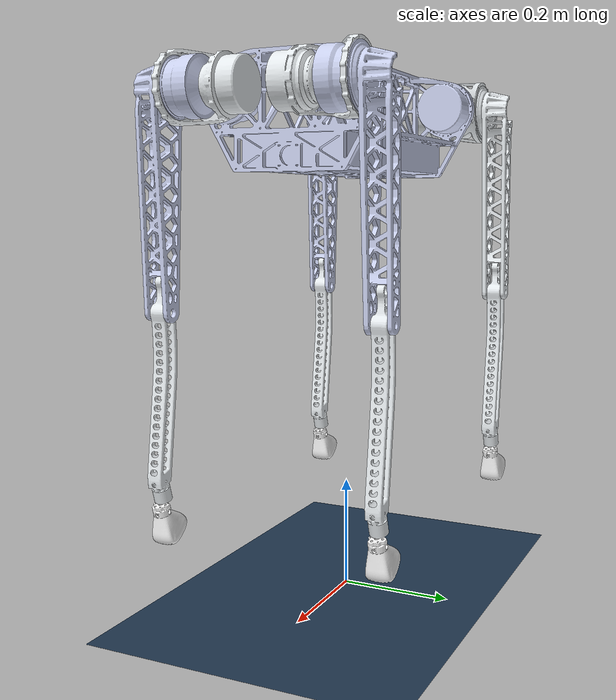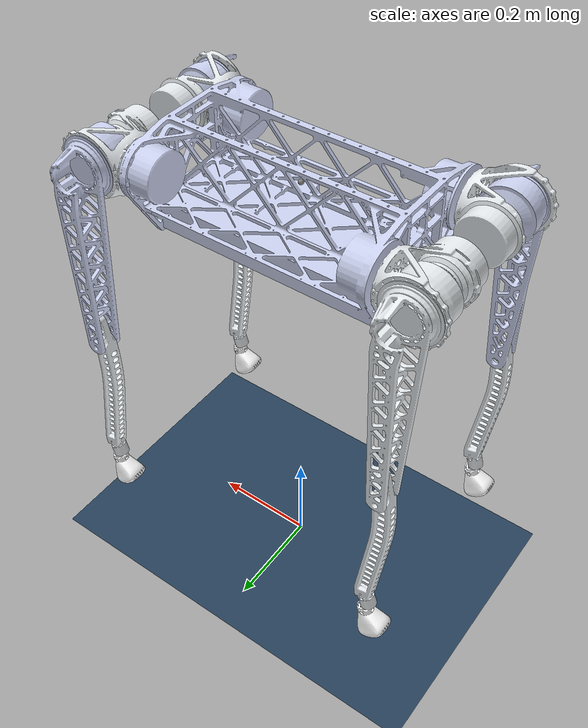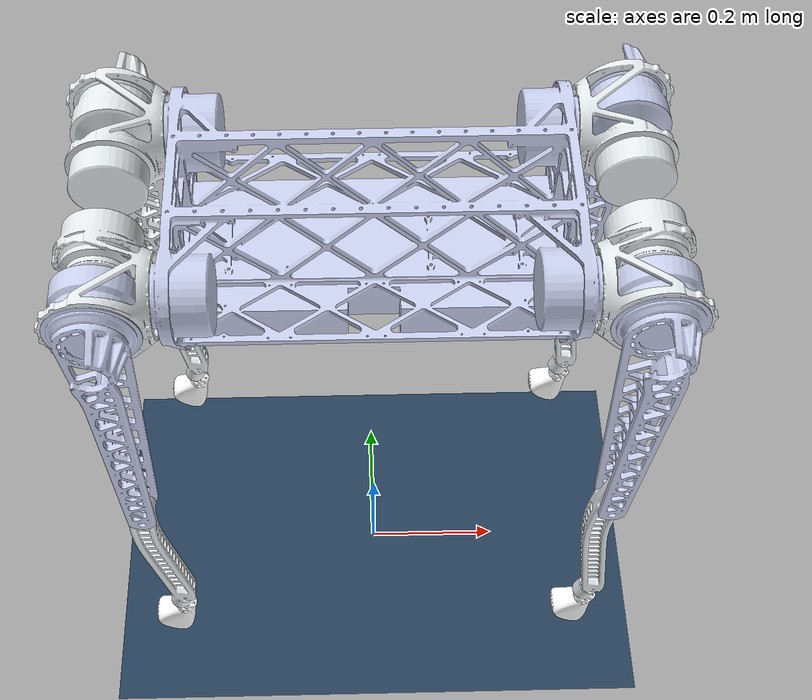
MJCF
<mujoco model="quadruped">
    <compiler angle="radian" meshdir="../meshes/" autolimits="true" />
    <option timestep="0.001" integrator="RK4">
    </option>

    <visual>
        <map force="0.1" zfar="30" />
        <rgba haze="0.15 0.25 0.35 1" />
        <global offwidth="2560" offheight="1440" elevation="-20" azimuth="120" />
    </visual>

    <asset>
        <texture type="skybox" builtin="gradient" rgb1=".3 .5 .7" rgb2="0 0 0" width="32"
            height="512" />
        <texture name="body" type="cube" builtin="flat" mark="cross" width="127" height="1278"
            rgb1="0.8 0.6 0.4"
            rgb2="0.8 0.6 0.4" markrgb="1 1 1" random="0.01" />
        <material name="body" texture="body" texuniform="true" rgba="0.8 0.6 .4 1" />
        <texture name="grid" type="2d" builtin="checker" width="512" height="512" rgb1=".1 .2 .3"
            rgb2=".2 .3 .4" />
        <material name="grid" texture="grid" texrepeat="1 1" texuniform="true" reflectance=".2" />
    </asset>

    <asset>
        <mesh name="base_link" file="base_link.STL" />
        <mesh name="FR_hip" file="FR_hip.STL" />
        <mesh name="FR_thigh" file="FR_thigh.STL" />
        <mesh name="FR_calf" file="FR_calf.STL" />
        <mesh name="FR_foot" file="FR_foot.STL" />
        <mesh name="RR_hip" file="RR_hip.STL" />
        <mesh name="RR_thigh" file="RR_thigh.STL" />
        <mesh name="RR_calf" file="RR_calf.STL" />
        <mesh name="RR_foot" file="RR_foot.STL" />
        <mesh name="FL_hip" file="FL_hip.STL" />
        <mesh name="FL_thigh" file="FL_thigh.STL" />
        <mesh name="FL_calf" file="FL_calf.STL" />
        <mesh name="FL_foot" file="FL_foot.STL" />
        <mesh name="RL_hip" file="RL_hip.STL" />
        <mesh name="RL_thigh" file="RL_thigh.STL" />
        <mesh name="RL_calf" file="RL_calf.STL" />
        <mesh name="RL_foot" file="RL_foot.STL" />
    </asset>
    <worldbody>
        <light diffuse=".5 .5 .5" pos="0 0 3" dir="0 0 -1" />
        <geom name="floor" type="plane" size="0 0 0.05" material="grid" />
        <body name="base_link" pos="0.0 0.0 0.9">
            <inertial pos="-9.2e-05 0.001447 -0.042478"
                quat="-0.00843975 0.707157 -0.00839426 0.706957" mass="35"
                diaginertia="0.945616 0.859891 0.259495" />
            <joint name="floating_base_joint" type="free" />
            <geom type="mesh" contype="0" conaffinity="0" group="1" density="0"
                rgba="0.79216 0.81961 0.93333 1"
                mesh="base_link" />
            <geom type="mesh" rgba="0.79216 0.81961 0.93333 1" mesh="base_link" />
            <site name="site_imu" pos="0 0 0" />

            <body name="FR_hip" pos="0.244 -0.115 0">
                <inertial pos="0.05057 0.046892 1e-06" quat="0.673131 0.673113 0.216685 0.216475"
                    mass="1.656"
                    diaginertia="0.00276441 0.00265385 0.0019183" />
                <joint name="FR_hip_joint" pos="0 0 0" axis="1 0 0" />
                <geom type="mesh" contype="0" conaffinity="0" group="1" density="0"
                    rgba="0.89804 0.91765 0.92941 1"
                    mesh="FR_hip" />
                <geom type="mesh" rgba="0.89804 0.91765 0.92941 1" mesh="FR_hip" />
                <body name="FR_thigh" pos="0.056 0.018587 0">
                    <inertial pos="-0.00063 -0.0201 -0.15827"
                        quat="0.447929 -0.0173336 -0.0144553 0.893784"
                        mass="1.337" diaginertia="0.0188849 0.0188331 0.00080071" />
                    <joint name="FR_thigh_joint" pos="0 0 0" axis="0 -1 0" />
                    <geom type="mesh" contype="0" conaffinity="0" group="1" density="0"
                        rgba="0.79216 0.81961 0.93333 1"
                        mesh="FR_thigh" />
                    <geom type="mesh" rgba="0.79216 0.81961 0.93333 1" mesh="FR_thigh" />
                    <body name="FR_calf" pos="0 -0.10009 -0.36">
                        <inertial pos="-0.00437397 -4.12835e-05 -0.157764"
                            quat="0.708075 1.33188e-05 0.0004089 0.706137" mass="0.75211"
                            diaginertia="0.0115786 0.0115192 0.000167844" />
                        <joint name="FR_calf_joint" pos="0 0 0" axis="0 -1 0" />
                        <geom type="mesh" contype="0" conaffinity="0" group="1" density="0"
                            rgba="0.898039 0.917647 0.929412 1" mesh="FR_calf" />
                        <geom type="mesh" rgba="0.898039 0.917647 0.929412 1" mesh="FR_calf" />
                        <geom pos="-0.00054829 0 -0.36" type="mesh" contype="0" conaffinity="0"
                            group="1" density="0"
                            rgba="1 1 1 1" mesh="FR_foot" />
                        <geom name="toe1_contact" type="sphere" size="0.015"
                            pos="-0.00054829 0 -0.36" rgba="0.7 0.7 0.7 0.7"
                            mass="0.10321" contype="1" conaffinity="1" priority="1" />
                        <site name="site_forcesensor1" pos="-0.00054829 0 -0.36" />
                    </body>
                </body>
            </body>
            <body name="RR_hip" pos="-0.244 -0.115 0">
                <inertial pos="-0.05057 0.046982 -1e-06"
                    quat="0.673113 0.673131 -0.216475 -0.216685" mass="1.656"
                    diaginertia="0.00276441 0.00265385 0.0019183" />
                <joint name="RR_hip_joint" pos="0 0 0" axis="1 0 0" />
                <geom type="mesh" contype="0" conaffinity="0" group="1" density="0"
                    rgba="0.89804 0.91765 0.92941 1"
                    mesh="RR_hip" />
                <geom type="mesh" rgba="0.89804 0.91765 0.92941 1" mesh="RR_hip" />
                <body name="RR_thigh" pos="-0.056 0.018587 0">
                    <inertial pos="-0.00063 -0.0201 -0.15827"
                        quat="0.447929 -0.0173336 -0.0144553 0.893784"
                        mass="1.337" diaginertia="0.0188849 0.0188331 0.00080071" />
                    <joint name="RR_thigh_joint" pos="0 0 0" axis="0 -1 0" />
                    <geom type="mesh" contype="0" conaffinity="0" group="1" density="0"
                        rgba="0.79216 0.81961 0.93333 1"
                        mesh="RR_thigh" />
                    <geom type="mesh" rgba="0.79216 0.81961 0.93333 1" mesh="RR_thigh" />
                    <body name="RR_calf" pos="0 -0.10009 -0.36">
                        <inertial pos="-0.00437397 -4.12848e-05 -0.157764"
                            quat="0.708075 1.33058e-05 0.0004089 0.706137" mass="0.75211"
                            diaginertia="0.0115786 0.0115192 0.000167844" />
                        <joint name="RR_calf_joint" pos="0 0 0" axis="0 -1 0" />
                        <geom type="mesh" contype="0" conaffinity="0" group="1" density="0"
                            rgba="0.89804 0.91765 0.92941 1" mesh="RR_calf" />
                        <geom type="mesh" rgba="0.89804 0.91765 0.92941 1" mesh="RR_calf" />
                        <geom pos="-0.00054828 0 -0.36" type="mesh" contype="0" conaffinity="0"
                            group="1" density="0"
                            rgba="1 1 1 1" mesh="RR_foot" />
                        <geom name="toe2_contact" type="sphere" size="0.015"
                            pos="-0.00054828 0 -0.36" rgba="0.7 0.7 0.7 0.7"
                            mass="0.10321" contype="1" conaffinity="1" priority="1" />
                        <site name="site_forcesensor2" pos="-0.00054828 0 -0.36" />
                    </body>
                </body>
            </body>
            <body name="FL_hip" pos="0.244 0.115 0">
                <inertial pos="0.05057 -0.046982 -1e-06"
                    quat="0.673131 0.673113 -0.216685 -0.216475" mass="1.656"
                    diaginertia="0.00276441 0.00265385 0.0019183" />
                <joint name="FL_hip_joint" pos="0 0 0" axis="1 0 0" />
                <geom type="mesh" contype="0" conaffinity="0" group="1" density="0"
                    rgba="0.89804 0.91765 0.92941 1"
                    mesh="FL_hip" />
                <geom type="mesh" rgba="0.89804 0.91765 0.92941 1" mesh="FL_hip" />
                <body name="FL_thigh" pos="0.056 -0.018587 0">
                    <inertial pos="-0.00063 0.0201 -0.15827"
                        quat="0.447819 -0.0173309 -0.0144618 0.893839" mass="1.337"
                        diaginertia="0.0188849 0.0188331 0.000800664" />
                    <joint name="FL_thigh_joint" pos="0 0 0" axis="0 -1 0" />
                    <geom type="mesh" contype="0" conaffinity="0" group="1" density="0"
                        rgba="0.79216 0.81961 0.93333 1"
                        mesh="FL_thigh" />
                    <geom type="mesh" rgba="0.79216 0.81961 0.93333 1" mesh="FL_thigh" />
                    <body name="FL_calf" pos="0 0.10009 -0.36">
                        <inertial pos="-0.00437397 1.36069e-05 -0.157764"
                            quat="0.706818 0.000275735 0.00014696 0.707395" mass="0.75211"
                            diaginertia="0.0115786 0.0115192 0.00016784" />
                        <joint name="FL_calf_joint" pos="0 0 0" axis="0 -1 0" />
                        <geom type="mesh" contype="0" conaffinity="0" group="1" density="0"
                            rgba="0.89804 0.91765 0.92941 1" mesh="FL_calf" />
                        <geom type="mesh" rgba="0.89804 0.91765 0.92941 1" mesh="FL_calf" />
                        <geom pos="-0.00054828 0 -0.36" type="mesh" contype="0" conaffinity="0"
                            group="1" density="0"
                            rgba="1 1 1 1" mesh="FL_foot" />
                        <geom name="toe3_contact" type="sphere" size="0.015"
                            pos="-0.00054828 0 -0.36" rgba="0.7 0.7 0.7 0.7"
                            mass="0.10321" contype="1" conaffinity="1" priority="1" />
                        <site name="site_forcesensor3" pos="-0.00054828 0 -0.36" />
                    </body>
                </body>
            </body>
            <body name="RL_hip" pos="-0.244 0.115 0">
                <inertial pos="-0.05057 -0.046982 1e-06" quat="0.673113 0.673131 0.216475 0.216685"
                    mass="1.656"
                    diaginertia="0.00276441 0.00265385 0.0019183" />
                <joint name="RL_hip_joint" pos="0 0 0" axis="1 0 0" />
                <geom type="mesh" contype="0" conaffinity="0" group="1" density="0"
                    rgba="0.89804 0.91765 0.92941 1"
                    mesh="RL_hip" />
                <geom type="mesh" rgba="0.89804 0.91765 0.92941 1" mesh="RL_hip" />
                <body name="RL_thigh" pos="-0.056 -0.018588 0">
                    <inertial pos="-0.00063 0.0201 -0.15827"
                        quat="0.447819 -0.0173309 -0.0144618 0.893839" mass="1.337"
                        diaginertia="0.0188849 0.0188331 0.000800664" />
                    <joint name="RL_thigh_joint" pos="0 0 0" axis="0 -1 0" />
                    <geom type="mesh" contype="0" conaffinity="0" group="1" density="0"
                        rgba="0.89804 0.91765 0.92941 1"
                        mesh="RL_thigh" />
                    <geom type="mesh" rgba="0.89804 0.91765 0.92941 1" mesh="RL_thigh" />
                    <body name="RL_calf" pos="0 0.10009 -0.36">
                        <inertial pos="-0.00437397 6.84984e-05 -0.157764"
                            quat="0.705558 0.000537227 -0.000115922 0.708652" mass="0.75211"
                            diaginertia="0.0115786 0.0115192 0.000167852" />
                        <joint name="RL_calf_joint" pos="0 0 0" axis="0 -1 0" />
                        <geom type="mesh" contype="0" conaffinity="0" group="1" density="0"
                            rgba="0.89804 0.91765 0.92941 1" mesh="RL_calf" />
                        <geom type="mesh" rgba="0.89804 0.91765 0.92941 1" mesh="RL_calf" />
                        <geom pos="-0.00054828 0 -0.36" type="mesh" contype="0" conaffinity="0"
                            group="1" density="0"
                            rgba="1 1 1 1" mesh="RL_foot" />
                        <geom name="toe4_contact" type="sphere" size="0.015"
                            pos="-0.00054828 0 -0.36" rgba="0.7 0.7 0.7 0.7"
                            mass="0.10321" contype="1" conaffinity="1" priority="1" />
                        <site name="site_forcesensor4" pos="-0.00054828 0 -0.36" />
                    </body>
                </body>
            </body>
        </body>
    </worldbody>
    <actuator>
        <motor name="FR_hip_joint" joint="FR_hip_joint" gear="1" ctrllimited="true"
            ctrlrange="-180 180" />
        <motor name="RR_hip_joint" joint="RR_hip_joint" gear="1" ctrllimited="true"
            ctrlrange="-180 180" />
        <motor name="FL_hip_joint" joint="FL_hip_joint" gear="1" ctrllimited="true"
            ctrlrange="-180 180" />
        <motor name="RL_hip_joint" joint="RL_hip_joint" gear="1" ctrllimited="true"
            ctrlrange="-180 180" />

        <motor name="FR_thigh_joint" joint="FR_thigh_joint" gear="1" ctrllimited="true"
            ctrlrange="-180 180" />
        <motor name="RR_thigh_joint" joint="RR_thigh_joint" gear="1" ctrllimited="true"
            ctrlrange="-180 180" />
        <motor name="FL_thigh_joint" joint="FL_thigh_joint" gear="1" ctrllimited="true"
            ctrlrange="-180 180" />
        <motor name="RL_thigh_joint" joint="RL_thigh_joint" gear="1" ctrllimited="true"
            ctrlrange="-180 180" />

        <motor name="FR_calf_joint" joint="FR_calf_joint" gear="1" ctrllimited="true"
            ctrlrange="-180 180" />
        <motor name="RR_calf_joint" joint="RR_calf_joint" gear="1" ctrllimited="true"
            ctrlrange="-180 180" />
        <motor name="FL_calf_joint" joint="FL_calf_joint" gear="1" ctrllimited="true"
            ctrlrange="-180 180" />
        <motor name="RL_calf_joint" joint="RL_calf_joint" gear="1" ctrllimited="true"
            ctrlrange="-180 180" />

    </actuator>

    <sensor>
        <force name="forcesensor1" site="site_forcesensor1" cutoff="5000.0" />
        <force name="forcesensor2" site="site_forcesensor2" cutoff="5000.0" />
        <force name="forcesensor3" site="site_forcesensor3" cutoff="5000.0" />
        <force name="forcesensor4" site="site_forcesensor4" cutoff="5000.0" />

        <accelerometer name="imu_acc" site="site_imu" />
        <gyro name="imu_gyro" site="site_imu" />
    </sensor>

    <contact>
        <exclude body1="base_link" body2="FR_thigh" />
        <exclude body1="base_link" body2="RR_thigh" />
        <exclude body1="base_link" body2="FL_thigh" />
        <exclude body1="base_link" body2="RL_thigh" />
    </contact>
</mujoco>
